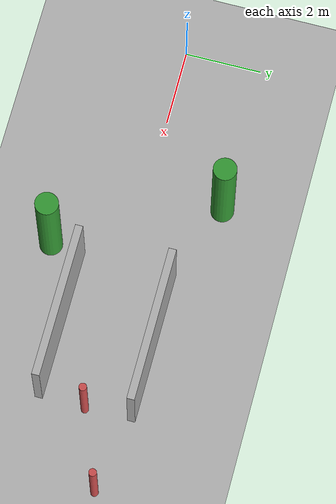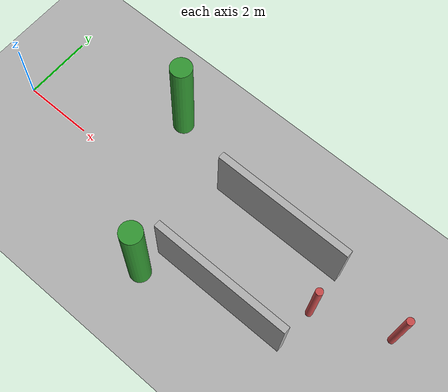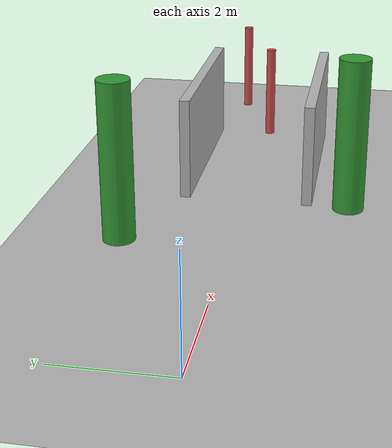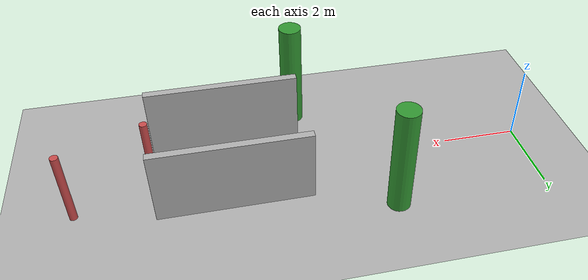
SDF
<?xml version="1.0" ?>
<sdf version="1.8">
  <world name="phase8_test_world">

    <!-- Physics -->
    <physics name="1ms" type="ignored">
      <max_step_size>0.001</max_step_size>
      <real_time_factor>1.0</real_time_factor>
    </physics>

    <!-- Plugins -->
    <plugin
      filename="libgz-sim8-physics-system.so"
      name="gz::sim::systems::Physics">
    </plugin>

    <plugin
      filename="libgz-sim8-scene-broadcaster-system.so"
      name="gz::sim::systems::SceneBroadcaster">
    </plugin>

    <plugin
      filename="libgz-sim8-user-commands-system.so"
      name="gz::sim::systems::UserCommands">
    </plugin>

    <plugin
      filename="libgz-sim8-sensors-system.so"
      name="gz::sim::systems::Sensors">
      <render_engine>ogre2</render_engine>
    </plugin>

    <!-- Light -->
    <light name="sun" type="directional">
      <cast_shadows>true</cast_shadows>
      <pose>0 0 10 0 0 0</pose>
      <diffuse>0.8 0.8 0.8 1</diffuse>
      <specular>0.2 0.2 0.2 1</specular>
      <attenuation>
        <range>1000</range>
        <constant>0.9</constant>
        <linear>0.01</linear>
        <quadratic>0.001</quadratic>
      </attenuation>
      <direction>-0.5 0.1 -0.9</direction>
    </light>

    <!-- Ground -->
    <model name="ground_plane">
      <static>true</static>
      <link name="link">
        <collision name="collision">
          <geometry>
            <plane>
              <normal>0 0 1</normal>
              <size>100 100</size>
            </plane>
          </geometry>
        </collision>
        <visual name="visual">
          <geometry>
            <plane>
              <normal>0 0 1</normal>
              <size>100 100</size>
            </plane>
          </geometry>
          <material>
            <ambient>0.6 0.6 0.6 1</ambient>
            <diffuse>0.7 0.7 0.7 1</diffuse>
          </material>
        </visual>
      </link>
    </model>

    <!-- LiDAR sensor model -->
    <model name="lidar_rig">
      <static>true</static>
      <pose>0 0 1.0 0 0 0</pose>

      <link name="lidar_link">
        <sensor name="lidar" type="gpu_lidar">
          <topic>/lidar/points</topic>
          <update_rate>10</update_rate>
          <ray>
            <scan>
              <horizontal>
                <samples>640</samples>
                <resolution>1</resolution>
                <min_angle>-1.5708</min_angle>
                <max_angle>1.5708</max_angle>
              </horizontal>
              <vertical>
                <samples>16</samples>
                <resolution>1</resolution>
                <min_angle>-0.26</min_angle>
                <max_angle>0.26</max_angle>
              </vertical>
            </scan>
            <range>
              <min>0.1</min>
              <max>10.0</max>
              <resolution>0.01</resolution>
            </range>
          </ray>
          <always_on>true</always_on>
          <visualize>true</visualize>
        </sensor>
      </link>
    </model>

    <!-- TREE 1 -->
    <model name="tree_1">
      <static>true</static>
      <pose>4 2 1.5 0 0 0</pose>
      <link name="link">
        <collision name="collision">
          <geometry>
            <cylinder>
              <radius>0.3</radius>
              <length>3.0</length>
            </cylinder>
          </geometry>
        </collision>
        <visual name="visual">
          <geometry>
            <cylinder>
              <radius>0.3</radius>
              <length>3.0</length>
            </cylinder>
          </geometry>
          <material>
            <ambient>0.2 0.5 0.2 1</ambient>
            <diffuse>0.2 0.6 0.2 1</diffuse>
          </material>
        </visual>
      </link>
    </model>

    <!-- TREE 2 -->
    <model name="tree_2">
      <static>true</static>
      <pose>6 -2 1.5 0 0 0</pose>
      <link name="link">
        <collision name="collision">
          <geometry>
            <cylinder>
              <radius>0.3</radius>
              <length>3.0</length>
            </cylinder>
          </geometry>
        </collision>
        <visual name="visual">
          <geometry>
            <cylinder>
              <radius>0.3</radius>
              <length>3.0</length>
            </cylinder>
          </geometry>
          <material>
            <ambient>0.2 0.5 0.2 1</ambient>
            <diffuse>0.2 0.6 0.2 1</diffuse>
          </material>
        </visual>
      </link>
    </model>

    <!-- WALL LEFT -->
    <model name="wall_left">
      <static>true</static>
      <pose>8 1.2 1.0 0 0 0</pose>
      <link name="link">
        <collision name="collision">
          <geometry>
            <box>
              <size>4 0.2 2</size>
            </box>
          </geometry>
        </collision>
        <visual name="visual">
          <geometry>
            <box>
              <size>4 0.2 2</size>
            </box>
          </geometry>
          <material>
            <ambient>0.5 0.5 0.5 1</ambient>
            <diffuse>0.7 0.7 0.7 1</diffuse>
          </material>
        </visual>
      </link>
    </model>

    <!-- WALL RIGHT -->
    <model name="wall_right">
      <static>true</static>
      <pose>8 -1.2 1.0 0 0 0</pose>
      <link name="link">
        <collision name="collision">
          <geometry>
            <box>
              <size>4 0.2 2</size>
            </box>
          </geometry>
        </collision>
        <visual name="visual">
          <geometry>
            <box>
              <size>4 0.2 2</size>
            </box>
          </geometry>
          <material>
            <ambient>0.5 0.5 0.5 1</ambient>
            <diffuse>0.7 0.7 0.7 1</diffuse>
          </material>
        </visual>
      </link>
    </model>

    <!-- POLE 1 -->
    <model name="pole_1">
      <static>true</static>
      <pose>10 0 1.0 0 0 0</pose>
      <link name="link">
        <collision name="collision">
          <geometry>
            <cylinder>
              <radius>0.1</radius>
              <length>2.0</length>
            </cylinder>
          </geometry>
        </collision>
        <visual name="visual">
          <geometry>
            <cylinder>
              <radius>0.1</radius>
              <length>2.0</length>
            </cylinder>
          </geometry>
          <material>
            <ambient>0.8 0.2 0.2 1</ambient>
            <diffuse>0.8 0.3 0.3 1</diffuse>
          </material>
        </visual>
      </link>
    </model>

    <!-- POLE 2 -->
    <model name="pole_2">
      <static>true</static>
      <pose>12 0.8 1.0 0 0 0</pose>
      <link name="link">
        <collision name="collision">
          <geometry>
            <cylinder>
              <radius>0.1</radius>
              <length>2.0</length>
            </cylinder>
          </geometry>
        </collision>
        <visual name="visual">
          <geometry>
            <cylinder>
              <radius>0.1</radius>
              <length>2.0</length>
            </cylinder>
          </geometry>
          <material>
            <ambient>0.8 0.2 0.2 1</ambient>
            <diffuse>0.8 0.3 0.3 1</diffuse>
          </material>
        </visual>
      </link>
    </model>

  </world>
</sdf>
